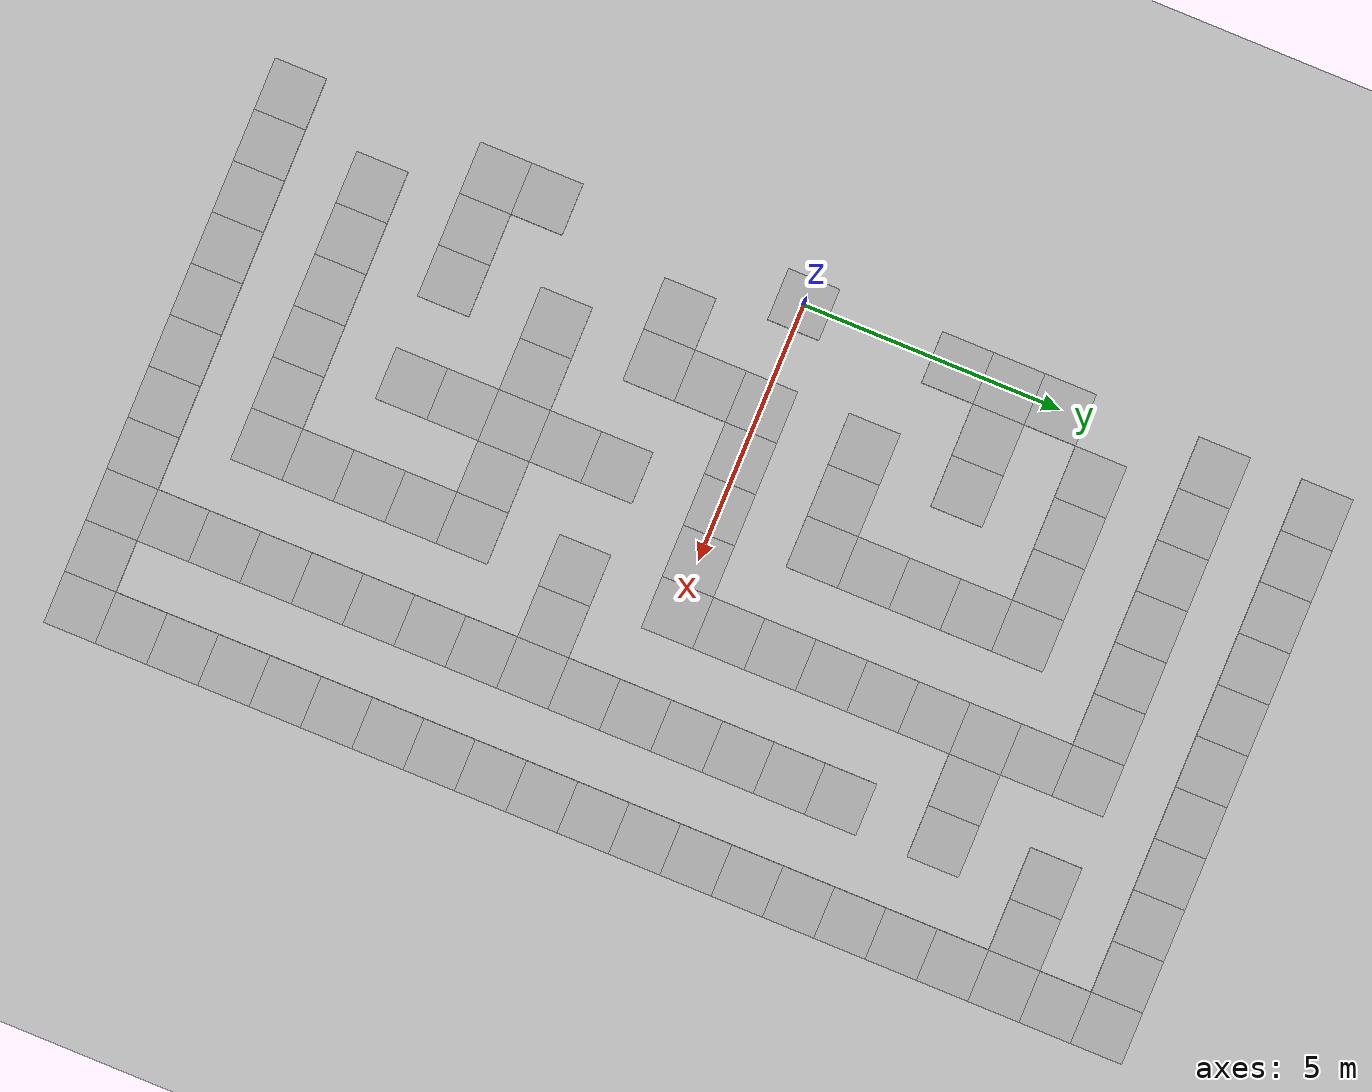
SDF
<sdf version="1.8">
 <world name="custom">
  <model name="ground_plane">
   <static>1</static>
   <link name="link">
    <collision name="collision">
     <geometry><plane><normal>0 0 1</normal><size>100 100</size></plane></geometry>
    </collision>
    <visual name="visual">
     <geometry><plane><normal>0 0 1</normal><size>100 100</size></plane></geometry>
     <material>
      <ambient>0.8 0.8 0.8 1</ambient>
      <diffuse>0.8 0.8 0.8 1</diffuse>
      <specular>0.8 0.8 0.8 1</specular>
     </material>
     <plugin name="__default__" filename="__default__"/>
    </visual>
   </link>
   <plugin name="__default__" filename="__default__"/>
  </model>
  <model name="obstacles">
   <pose>0 0 0.5 0 0 0</pose>
   <static>true</static>
   <link name="wall2">
    <pose>9 -10 -0.5 0 0 0</pose>
    <collision name="wall2_collision"><geometry><box><size>1 1 0.25</size></box></geometry></collision>
    <visual name="wall2_visual"><geometry><box><size>1 1 0.25</size></box></geometry></visual>
   </link>
   <link name="wall6">
    <pose>9 8 -0.5 0 0 0</pose>
    <collision name="wall6_collision"><geometry><box><size>1 1 0.25</size></box></geometry></collision>
    <visual name="wall6_visual"><geometry><box><size>1 1 0.25</size></box></geometry></visual>
   </link>
   <link name="wall8">
    <pose>1 4 -0.5 0 0 0</pose>
    <collision name="wall8_collision"><geometry><box><size>1 1 0.25</size></box></geometry></collision>
    <visual name="wall8_visual"><geometry><box><size>1 1 0.25</size></box></geometry></visual>
   </link>
   <link name="wall11">
    <pose>4 5 -0.5 0 0 0</pose>
    <collision name="wall11_collision"><geometry><box><size>1 1 0.25</size></box></geometry></collision>
    <visual name="wall11_visual"><geometry><box><size>1 1 0.25</size></box></geometry></visual>
   </link>
   <link name="wall12">
    <pose>8 -7 -0.5 0 0 0</pose>
    <collision name="wall12_collision"><geometry><box><size>1 1 0.25</size></box></geometry></collision>
    <visual name="wall12_visual"><geometry><box><size>1 1 0.25</size></box></geometry></visual>
   </link>
   <link name="wall14">
    <pose>8 2 -0.5 0 0 0</pose>
    <collision name="wall14_collision"><geometry><box><size>1 1 0.25</size></box></geometry></collision>
    <visual name="wall14_visual"><geometry><box><size>1 1 0.25</size></box></geometry></visual>
   </link>
   <link name="wall17">
    <pose>1 -10 -0.5 0 0 0</pose>
    <collision name="wall17_collision"><geometry><box><size>1 1 0.25</size></box></geometry></collision>
    <visual name="wall17_visual"><geometry><box><size>1 1 0.25</size></box></geometry></visual>
   </link>
   <link name="wall19">
    <pose>4 0 -0.5 0 0 0</pose>
    <collision name="wall19_collision"><geometry><box><size>1 1 0.25</size></box></geometry></collision>
    <visual name="wall19_visual"><geometry><box><size>1 1 0.25</size></box></geometry></visual>
   </link>
   <link name="wall20">
    <pose>5 -8 -0.5 0 0 0</pose>
    <collision name="wall20_collision"><geometry><box><size>1 1 0.25</size></box></geometry></collision>
    <visual name="wall20_visual"><geometry><box><size>1 1 0.25</size></box></geometry></visual>
   </link>
   <link name="wall21">
    <pose>8 -3 -0.5 0 0 0</pose>
    <collision name="wall21_collision"><geometry><box><size>1 1 0.25</size></box></geometry></collision>
    <visual name="wall21_visual"><geometry><box><size>1 1 0.25</size></box></geometry></visual>
   </link>
   <link name="wall23">
    <pose>8 6 -0.5 0 0 0</pose>
    <collision name="wall23_collision"><geometry><box><size>1 1 0.25</size></box></geometry></collision>
    <visual name="wall23_visual"><geometry><box><size>1 1 0.25</size></box></geometry></visual>
   </link>
   <link name="wall24">
    <pose>1 -6 -0.5 0 0 0</pose>
    <collision name="wall24_collision"><geometry><box><size>1 1 0.25</size></box></geometry></collision>
    <visual name="wall24_visual"><geometry><box><size>1 1 0.25</size></box></geometry></visual>
   </link>
   <link name="wall26">
    <pose>4 -5 -0.5 0 0 0</pose>
    <collision name="wall26_collision"><geometry><box><size>1 1 0.25</size></box></geometry></collision>
    <visual name="wall26_visual"><geometry><box><size>1 1 0.25</size></box></geometry></visual>
   </link>
   <link name="wall28">
    <pose>4 4 -0.5 0 0 0</pose>
    <collision name="wall28_collision"><geometry><box><size>1 1 0.25</size></box></geometry></collision>
    <visual name="wall28_visual"><geometry><box><size>1 1 0.25</size></box></geometry></visual>
   </link>
   <link name="wall29">
    <pose>5 -4 -0.5 0 0 0</pose>
    <collision name="wall29_collision"><geometry><box><size>1 1 0.25</size></box></geometry></collision>
    <visual name="wall29_visual"><geometry><box><size>1 1 0.25</size></box></geometry></visual>
   </link>
   <link name="wall30">
    <pose>8 -8 -0.5 0 0 0</pose>
    <collision name="wall30_collision"><geometry><box><size>1 1 0.25</size></box></geometry></collision>
    <visual name="wall30_visual"><geometry><box><size>1 1 0.25</size></box></geometry></visual>
   </link>
   <link name="wall31">
    <pose>8 1 -0.5 0 0 0</pose>
    <collision name="wall31_collision"><geometry><box><size>1 1 0.25</size></box></geometry></collision>
    <visual name="wall31_visual"><geometry><box><size>1 1 0.25</size></box></geometry></visual>
   </link>
   <link name="wall36">
    <pose>4 -10 -0.5 0 0 0</pose>
    <collision name="wall36_collision"><geometry><box><size>1 1 0.25</size></box></geometry></collision>
    <visual name="wall36_visual"><geometry><box><size>1 1 0.25</size></box></geometry></visual>
   </link>
   <link name="wall38">
    <pose>4 8 -0.5 0 0 0</pose>
    <collision name="wall38_collision"><geometry><box><size>1 1 0.25</size></box></geometry></collision>
    <visual name="wall38_visual"><geometry><box><size>1 1 0.25</size></box></geometry></visual>
   </link>
   <link name="wall39">
    <pose>7 10 -0.5 0 0 0</pose>
    <collision name="wall39_collision"><geometry><box><size>1 1 0.25</size></box></geometry></collision>
    <visual name="wall39_visual"><geometry><box><size>1 1 0.25</size></box></geometry></visual>
   </link>
   <link name="wall45">
    <pose>4 -6 -0.5 0 0 0</pose>
    <collision name="wall45_collision"><geometry><box><size>1 1 0.25</size></box></geometry></collision>
    <visual name="wall45_visual"><geometry><box><size>1 1 0.25</size></box></geometry></visual>
   </link>
   <link name="wall51">
    <pose>6 8 -0.5 0 0 0</pose>
    <collision name="wall51_collision"><geometry><box><size>1 1 0.25</size></box></geometry></collision>
    <visual name="wall51_visual"><geometry><box><size>1 1 0.25</size></box></geometry></visual>
   </link>
   <link name="wall55">
    <pose>10 10 -0.5 0 0 0</pose>
    <collision name="wall55_collision"><geometry><box><size>1 1 0.25</size></box></geometry></collision>
    <visual name="wall55_visual"><geometry><box><size>1 1 0.25</size></box></geometry></visual>
   </link>
   <link name="wall59">
    <pose>6 3 -0.5 0 0 0</pose>
    <collision name="wall59_collision"><geometry><box><size>1 1 0.25</size></box></geometry></collision>
    <visual name="wall59_visual"><geometry><box><size>1 1 0.25</size></box></geometry></visual>
   </link>
   <link name="wall62">
    <pose>10 5 -0.5 0 0 0</pose>
    <collision name="wall62_collision"><geometry><box><size>1 1 0.25</size></box></geometry></collision>
    <visual name="wall62_visual"><geometry><box><size>1 1 0.25</size></box></geometry></visual>
   </link>
   <link name="wall63">
    <pose>2 10 -0.5 0 0 0</pose>
    <collision name="wall63_collision"><geometry><box><size>1 1 0.25</size></box></geometry></collision>
    <visual name="wall63_visual"><geometry><box><size>1 1 0.25</size></box></geometry></visual>
   </link>
   <link name="wall64">
    <pose>3 2 -0.5 0 0 0</pose>
    <collision name="wall64_collision"><geometry><box><size>1 1 0.25</size></box></geometry></collision>
    <visual name="wall64_visual"><geometry><box><size>1 1 0.25</size></box></geometry></visual>
   </link>
   <link name="wall65">
    <pose>6 -2 -0.5 0 0 0</pose>
    <collision name="wall65_collision"><geometry><box><size>1 1 0.25</size></box></geometry></collision>
    <visual name="wall65_visual"><geometry><box><size>1 1 0.25</size></box></geometry></visual>
   </link>
   <link name="wall66">
    <pose>6 7 -0.5 0 0 0</pose>
    <collision name="wall66_collision"><geometry><box><size>1 1 0.25</size></box></geometry></collision>
    <visual name="wall66_visual"><geometry><box><size>1 1 0.25</size></box></geometry></visual>
   </link>
   <link name="wall67">
    <pose>7 -10 -0.5 0 0 0</pose>
    <collision name="wall67_collision"><geometry><box><size>1 1 0.25</size></box></geometry></collision>
    <visual name="wall67_visual"><geometry><box><size>1 1 0.25</size></box></geometry></visual>
   </link>
   <link name="wall69">
    <pose>10 -9 -0.5 0 0 0</pose>
    <collision name="wall69_collision"><geometry><box><size>1 1 0.25</size></box></geometry></collision>
    <visual name="wall69_visual"><geometry><box><size>1 1 0.25</size></box></geometry></visual>
   </link>
   <link name="wall70">
    <pose>10 0 -0.5 0 0 0</pose>
    <collision name="wall70_collision"><geometry><box><size>1 1 0.25</size></box></geometry></collision>
    <visual name="wall70_visual"><geometry><box><size>1 1 0.25</size></box></geometry></visual>
   </link>
   <link name="wall71">
    <pose>2 -4 -0.5 0 0 0</pose>
    <collision name="wall71_collision"><geometry><box><size>1 1 0.25</size></box></geometry></collision>
    <visual name="wall71_visual"><geometry><box><size>1 1 0.25</size></box></geometry></visual>
   </link>
   <link name="wall72">
    <pose>10 9 -0.5 0 0 0</pose>
    <collision name="wall72_collision"><geometry><box><size>1 1 0.25</size></box></geometry></collision>
    <visual name="wall72_visual"><geometry><box><size>1 1 0.25</size></box></geometry></visual>
   </link>
   <link name="wall74">
    <pose>6 -7 -0.5 0 0 0</pose>
    <collision name="wall74_collision"><geometry><box><size>1 1 0.25</size></box></geometry></collision>
    <visual name="wall74_visual"><geometry><box><size>1 1 0.25</size></box></geometry></visual>
   </link>
   <link name="wall75">
    <pose>3 6 -0.5 0 0 0</pose>
    <collision name="wall75_collision"><geometry><box><size>1 1 0.25</size></box></geometry></collision>
    <visual name="wall75_visual"><geometry><box><size>1 1 0.25</size></box></geometry></visual>
   </link>
   <link name="wall76">
    <pose>6 2 -0.5 0 0 0</pose>
    <collision name="wall76_collision"><geometry><box><size>1 1 0.25</size></box></geometry></collision>
    <visual name="wall76_visual"><geometry><box><size>1 1 0.25</size></box></geometry></visual>
   </link>
   <link name="wall79">
    <pose>1 8 -0.5 0 0 0</pose>
    <collision name="wall79_collision"><geometry><box><size>1 1 0.25</size></box></geometry></collision>
    <visual name="wall79_visual"><geometry><box><size>1 1 0.25</size></box></geometry></visual>
   </link>
   <link name="wall80">
    <pose>10 -5 -0.5 0 0 0</pose>
    <collision name="wall80_collision"><geometry><box><size>1 1 0.25</size></box></geometry></collision>
    <visual name="wall80_visual"><geometry><box><size>1 1 0.25</size></box></geometry></visual>
   </link>
   <link name="wall81">
    <pose>10 4 -0.5 0 0 0</pose>
    <collision name="wall81_collision"><geometry><box><size>1 1 0.25</size></box></geometry></collision>
    <visual name="wall81_visual"><geometry><box><size>1 1 0.25</size></box></geometry></visual>
   </link>
   <link name="wall82">
    <pose>2 0 -0.5 0 0 0</pose>
    <collision name="wall82_collision"><geometry><box><size>1 1 0.25</size></box></geometry></collision>
    <visual name="wall82_visual"><geometry><box><size>1 1 0.25</size></box></geometry></visual>
   </link>
   <link name="wall85">
    <pose>3 -8 -0.5 0 0 0</pose>
    <collision name="wall85_collision"><geometry><box><size>1 1 0.25</size></box></geometry></collision>
    <visual name="wall85_visual"><geometry><box><size>1 1 0.25</size></box></geometry></visual>
   </link>
   <link name="wall86">
    <pose>6 6 -0.5 0 0 0</pose>
    <collision name="wall86_collision"><geometry><box><size>1 1 0.25</size></box></geometry></collision>
    <visual name="wall86_visual"><geometry><box><size>1 1 0.25</size></box></geometry></visual>
   </link>
   <link name="wall87">
    <pose>5 10 -0.5 0 0 0</pose>
    <collision name="wall87_collision"><geometry><box><size>1 1 0.25</size></box></geometry></collision>
    <visual name="wall87_visual"><geometry><box><size>1 1 0.25</size></box></geometry></visual>
   </link>
   <link name="wall89">
    <pose>8 -2 -0.5 0 0 0</pose>
    <collision name="wall89_collision"><geometry><box><size>1 1 0.25</size></box></geometry></collision>
    <visual name="wall89_visual"><geometry><box><size>1 1 0.25</size></box></geometry></visual>
   </link>
   <link name="wall94">
    <pose>10 -10 -0.5 0 0 0</pose>
    <collision name="wall94_collision"><geometry><box><size>1 1 0.25</size></box></geometry></collision>
    <visual name="wall94_visual"><geometry><box><size>1 1 0.25</size></box></geometry></visual>
   </link>
   <link name="wall95">
    <pose>10 -1 -0.5 0 0 0</pose>
    <collision name="wall95_collision"><geometry><box><size>1 1 0.25</size></box></geometry></collision>
    <visual name="wall95_visual"><geometry><box><size>1 1 0.25</size></box></geometry></visual>
   </link>
   <link name="wall96">
    <pose>10 8 -0.5 0 0 0</pose>
    <collision name="wall96_collision"><geometry><box><size>1 1 0.25</size></box></geometry></collision>
    <visual name="wall96_visual"><geometry><box><size>1 1 0.25</size></box></geometry></visual>
   </link>
   <link name="wall97">
    <pose>2 4 -0.5 0 0 0</pose>
    <collision name="wall97_collision"><geometry><box><size>1 1 0.25</size></box></geometry></collision>
    <visual name="wall97_visual"><geometry><box><size>1 1 0.25</size></box></geometry></visual>
   </link>
   <link name="wall100">
    <pose>6 -8 -0.5 0 0 0</pose>
    <collision name="wall100_collision"><geometry><box><size>1 1 0.25</size></box></geometry></collision>
    <visual name="wall100_visual"><geometry><box><size>1 1 0.25</size></box></geometry></visual>
   </link>
   <link name="wall102">
    <pose>8 10 -0.5 0 0 0</pose>
    <collision name="wall102_collision"><geometry><box><size>1 1 0.25</size></box></geometry></collision>
    <visual name="wall102_visual"><geometry><box><size>1 1 0.25</size></box></geometry></visual>
   </link>
   <link name="wall105">
    <pose>1 -2 -0.5 0 0 0</pose>
    <collision name="wall105_collision"><geometry><box><size>1 1 0.25</size></box></geometry></collision>
    <visual name="wall105_visual"><geometry><box><size>1 1 0.25</size></box></geometry></visual>
   </link>
   <link name="wall107">
    <pose>10 -6 -0.5 0 0 0</pose>
    <collision name="wall107_collision"><geometry><box><size>1 1 0.25</size></box></geometry></collision>
    <visual name="wall107_visual"><geometry><box><size>1 1 0.25</size></box></geometry></visual>
   </link>
   <link name="wall108">
    <pose>2 -10 -0.5 0 0 0</pose>
    <collision name="wall108_collision"><geometry><box><size>1 1 0.25</size></box></geometry></collision>
    <visual name="wall108_visual"><geometry><box><size>1 1 0.25</size></box></geometry></visual>
   </link>
   <link name="wall109">
    <pose>10 3 -0.5 0 0 0</pose>
    <collision name="wall109_collision"><geometry><box><size>1 1 0.25</size></box></geometry></collision>
    <visual name="wall109_visual"><geometry><box><size>1 1 0.25</size></box></geometry></visual>
   </link>
   <link name="wall110">
    <pose>2 -1 -0.5 0 0 0</pose>
    <collision name="wall110_collision"><geometry><box><size>1 1 0.25</size></box></geometry></collision>
    <visual name="wall110_visual"><geometry><box><size>1 1 0.25</size></box></geometry></visual>
   </link>
   <link name="wall113">
    <pose>5 0 -0.5 0 0 0</pose>
    <collision name="wall113_collision"><geometry><box><size>1 1 0.25</size></box></geometry></collision>
    <visual name="wall113_visual"><geometry><box><size>1 1 0.25</size></box></geometry></visual>
   </link>
   <link name="wall114">
    <pose>8 -4 -0.5 0 0 0</pose>
    <collision name="wall114_collision"><geometry><box><size>1 1 0.25</size></box></geometry></collision>
    <visual name="wall114_visual"><geometry><box><size>1 1 0.25</size></box></geometry></visual>
   </link>
   <link name="wall119">
    <pose>2 -6 -0.5 0 0 0</pose>
    <collision name="wall119_collision"><geometry><box><size>1 1 0.25</size></box></geometry></collision>
    <visual name="wall119_visual"><geometry><box><size>1 1 0.25</size></box></geometry></visual>
   </link>
   <link name="wall121">
    <pose>4 3 -0.5 0 0 0</pose>
    <collision name="wall121_collision"><geometry><box><size>1 1 0.25</size></box></geometry></collision>
    <visual name="wall121_visual"><geometry><box><size>1 1 0.25</size></box></geometry></visual>
   </link>
   <link name="wall122">
    <pose>8 -9 -0.5 0 0 0</pose>
    <collision name="wall122_collision"><geometry><box><size>1 1 0.25</size></box></geometry></collision>
    <visual name="wall122_visual"><geometry><box><size>1 1 0.25</size></box></geometry></visual>
   </link>
   <link name="wall124">
    <pose>8 0 -0.5 0 0 0</pose>
    <collision name="wall124_collision"><geometry><box><size>1 1 0.25</size></box></geometry></collision>
    <visual name="wall124_visual"><geometry><box><size>1 1 0.25</size></box></geometry></visual>
   </link>
   <link name="wall128">
    <pose>1 6 -0.5 0 0 0</pose>
    <collision name="wall128_collision"><geometry><box><size>1 1 0.25</size></box></geometry></collision>
    <visual name="wall128_visual"><geometry><box><size>1 1 0.25</size></box></geometry></visual>
   </link>
   <link name="wall129">
    <pose>0 10 -0.5 0 0 0</pose>
    <collision name="wall129_collision"><geometry><box><size>1 1 0.25</size></box></geometry></collision>
    <visual name="wall129_visual"><geometry><box><size>1 1 0.25</size></box></geometry></visual>
   </link>
   <link name="wall131">
    <pose>4 -2 -0.5 0 0 0</pose>
    <collision name="wall131_collision"><geometry><box><size>1 1 0.25</size></box></geometry></collision>
    <visual name="wall131_visual"><geometry><box><size>1 1 0.25</size></box></geometry></visual>
   </link>
   <link name="wall132">
    <pose>5 -10 -0.5 0 0 0</pose>
    <collision name="wall132_collision"><geometry><box><size>1 1 0.25</size></box></geometry></collision>
    <visual name="wall132_visual"><geometry><box><size>1 1 0.25</size></box></geometry></visual>
   </link>
   <link name="wall133">
    <pose>8 -5 -0.5 0 0 0</pose>
    <collision name="wall133_collision"><geometry><box><size>1 1 0.25</size></box></geometry></collision>
    <visual name="wall133_visual"><geometry><box><size>1 1 0.25</size></box></geometry></visual>
   </link>
   <link name="wall134">
    <pose>5 8 -0.5 0 0 0</pose>
    <collision name="wall134_collision"><geometry><box><size>1 1 0.25</size></box></geometry></collision>
    <visual name="wall134_visual"><geometry><box><size>1 1 0.25</size></box></geometry></visual>
   </link>
   <link name="wall135">
    <pose>8 4 -0.5 0 0 0</pose>
    <collision name="wall135_collision"><geometry><box><size>1 1 0.25</size></box></geometry></collision>
    <visual name="wall135_visual"><geometry><box><size>1 1 0.25</size></box></geometry></visual>
   </link>
   <link name="wall137">
    <pose>1 -8 -0.5 0 0 0</pose>
    <collision name="wall137_collision"><geometry><box><size>1 1 0.25</size></box></geometry></collision>
    <visual name="wall137_visual"><geometry><box><size>1 1 0.25</size></box></geometry></visual>
   </link>
   <link name="wall138">
    <pose>0 5 -0.5 0 0 0</pose>
    <collision name="wall138_collision"><geometry><box><size>1 1 0.25</size></box></geometry></collision>
    <visual name="wall138_visual"><geometry><box><size>1 1 0.25</size></box></geometry></visual>
   </link>
   <link name="wall141">
    <pose>4 2 -0.5 0 0 0</pose>
    <collision name="wall141_collision"><geometry><box><size>1 1 0.25</size></box></geometry></collision>
    <visual name="wall141_visual"><geometry><box><size>1 1 0.25</size></box></geometry></visual>
   </link>
   <link name="wall143">
    <pose>8 -10 -0.5 0 0 0</pose>
    <collision name="wall143_collision"><geometry><box><size>1 1 0.25</size></box></geometry></collision>
    <visual name="wall143_visual"><geometry><box><size>1 1 0.25</size></box></geometry></visual>
   </link>
   <link name="wall144">
    <pose>8 -1 -0.5 0 0 0</pose>
    <collision name="wall144_collision"><geometry><box><size>1 1 0.25</size></box></geometry></collision>
    <visual name="wall144_visual"><geometry><box><size>1 1 0.25</size></box></geometry></visual>
   </link>
   <link name="wall145">
    <pose>8 8 -0.5 0 0 0</pose>
    <collision name="wall145_collision"><geometry><box><size>1 1 0.25</size></box></geometry></collision>
    <visual name="wall145_visual"><geometry><box><size>1 1 0.25</size></box></geometry></visual>
   </link>
   <link name="wall146">
    <pose>0 0 -0.5 0 0 0</pose>
    <collision name="wall146_collision"><geometry><box><size>1 1 0.25</size></box></geometry></collision>
    <visual name="wall146_visual"><geometry><box><size>1 1 0.25</size></box></geometry></visual>
   </link>
   <link name="wall148">
    <pose>4 -3 -0.5 0 0 0</pose>
    <collision name="wall148_collision"><geometry><box><size>1 1 0.25</size></box></geometry></collision>
    <visual name="wall148_visual"><geometry><box><size>1 1 0.25</size></box></geometry></visual>
   </link>
   <link name="wall150">
    <pose>4 6 -0.5 0 0 0</pose>
    <collision name="wall150_collision"><geometry><box><size>1 1 0.25</size></box></geometry></collision>
    <visual name="wall150_visual"><geometry><box><size>1 1 0.25</size></box></geometry></visual>
   </link>
   <link name="wall152">
    <pose>8 -6 -0.5 0 0 0</pose>
    <collision name="wall152_collision"><geometry><box><size>1 1 0.25</size></box></geometry></collision>
    <visual name="wall152_visual"><geometry><box><size>1 1 0.25</size></box></geometry></visual>
   </link>
   <link name="wall154">
    <pose>0 -5 -0.5 0 0 0</pose>
    <collision name="wall154_collision"><geometry><box><size>1 1 0.25</size></box></geometry></collision>
    <visual name="wall154_visual"><geometry><box><size>1 1 0.25</size></box></geometry></visual>
   </link>
   <link name="wall156">
    <pose>0 4 -0.5 0 0 0</pose>
    <collision name="wall156_collision"><geometry><box><size>1 1 0.25</size></box></geometry></collision>
    <visual name="wall156_visual"><geometry><box><size>1 1 0.25</size></box></geometry></visual>
   </link>
   <link name="wall158">
    <pose>4 -8 -0.5 0 0 0</pose>
    <collision name="wall158_collision"><geometry><box><size>1 1 0.25</size></box></geometry></collision>
    <visual name="wall158_visual"><geometry><box><size>1 1 0.25</size></box></geometry></visual>
   </link>
   <link name="wall163">
    <pose>0 -10 -0.5 0 0 0</pose>
    <collision name="wall163_collision"><geometry><box><size>1 1 0.25</size></box></geometry></collision>
    <visual name="wall163_visual"><geometry><box><size>1 1 0.25</size></box></geometry></visual>
   </link>
   <link name="wall164">
    <pose>0 8 -0.5 0 0 0</pose>
    <collision name="wall164_collision"><geometry><box><size>1 1 0.25</size></box></geometry></collision>
    <visual name="wall164_visual"><geometry><box><size>1 1 0.25</size></box></geometry></visual>
   </link>
   <link name="wall166">
    <pose>3 10 -0.5 0 0 0</pose>
    <collision name="wall166_collision"><geometry><box><size>1 1 0.25</size></box></geometry></collision>
    <visual name="wall166_visual"><geometry><box><size>1 1 0.25</size></box></geometry></visual>
   </link>
   <link name="wall167">
    <pose>4 -4 -0.5 0 0 0</pose>
    <collision name="wall167_collision"><geometry><box><size>1 1 0.25</size></box></geometry></collision>
    <visual name="wall167_visual"><geometry><box><size>1 1 0.25</size></box></geometry></visual>
   </link>
   <link name="wall168">
    <pose>7 -2 -0.5 0 0 0</pose>
    <collision name="wall168_collision"><geometry><box><size>1 1 0.25</size></box></geometry></collision>
    <visual name="wall168_visual"><geometry><box><size>1 1 0.25</size></box></geometry></visual>
   </link>
   <link name="wall171">
    <pose>0 -6 -0.5 0 0 0</pose>
    <collision name="wall171_collision"><geometry><box><size>1 1 0.25</size></box></geometry></collision>
    <visual name="wall171_visual"><geometry><box><size>1 1 0.25</size></box></geometry></visual>
   </link>
   <link name="wall173">
    <pose>0 3 -0.5 0 0 0</pose>
    <collision name="wall173_collision"><geometry><box><size>1 1 0.25</size></box></geometry></collision>
    <visual name="wall173_visual"><geometry><box><size>1 1 0.25</size></box></geometry></visual>
   </link>
   <link name="wall175">
    <pose>3 -4 -0.5 0 0 0</pose>
    <collision name="wall175_collision"><geometry><box><size>1 1 0.25</size></box></geometry></collision>
    <visual name="wall175_visual"><geometry><box><size>1 1 0.25</size></box></geometry></visual>
   </link>
   <link name="wall177">
    <pose>6 1 -0.5 0 0 0</pose>
    <collision name="wall177_collision"><geometry><box><size>1 1 0.25</size></box></geometry></collision>
    <visual name="wall177_visual"><geometry><box><size>1 1 0.25</size></box></geometry></visual>
   </link>
   <link name="wall178">
    <pose>6 10 -0.5 0 0 0</pose>
    <collision name="wall178_collision"><geometry><box><size>1 1 0.25</size></box></geometry></collision>
    <visual name="wall178_visual"><geometry><box><size>1 1 0.25</size></box></geometry></visual>
   </link>
   <link name="wall183">
    <pose>2 8 -0.5 0 0 0</pose>
    <collision name="wall183_collision"><geometry><box><size>1 1 0.25</size></box></geometry></collision>
    <visual name="wall183_visual"><geometry><box><size>1 1 0.25</size></box></geometry></visual>
   </link>
   <link name="wall185">
    <pose>3 0 -0.5 0 0 0</pose>
    <collision name="wall185_collision"><geometry><box><size>1 1 0.25</size></box></geometry></collision>
    <visual name="wall185_visual"><geometry><box><size>1 1 0.25</size></box></geometry></visual>
   </link>
   <link name="wall186">
    <pose>6 -4 -0.5 0 0 0</pose>
    <collision name="wall186_collision"><geometry><box><size>1 1 0.25</size></box></geometry></collision>
    <visual name="wall186_visual"><geometry><box><size>1 1 0.25</size></box></geometry></visual>
   </link>
   <link name="wall187">
    <pose>6 5 -0.5 0 0 0</pose>
    <collision name="wall187_collision"><geometry><box><size>1 1 0.25</size></box></geometry></collision>
    <visual name="wall187_visual"><geometry><box><size>1 1 0.25</size></box></geometry></visual>
   </link>
   <link name="wall189">
    <pose>7 6 -0.5 0 0 0</pose>
    <collision name="wall189_collision"><geometry><box><size>1 1 0.25</size></box></geometry></collision>
    <visual name="wall189_visual"><geometry><box><size>1 1 0.25</size></box></geometry></visual>
   </link>
   <link name="wall192">
    <pose>10 -2 -0.5 0 0 0</pose>
    <collision name="wall192_collision"><geometry><box><size>1 1 0.25</size></box></geometry></collision>
    <visual name="wall192_visual"><geometry><box><size>1 1 0.25</size></box></geometry></visual>
   </link>
   <link name="wall193">
    <pose>10 7 -0.5 0 0 0</pose>
    <collision name="wall193_collision"><geometry><box><size>1 1 0.25</size></box></geometry></collision>
    <visual name="wall193_visual"><geometry><box><size>1 1 0.25</size></box></geometry></visual>
   </link>
   <link name="wall195">
    <pose>6 0 -0.5 0 0 0</pose>
    <collision name="wall195_collision"><geometry><box><size>1 1 0.25</size></box></geometry></collision>
    <visual name="wall195_visual"><geometry><box><size>1 1 0.25</size></box></geometry></visual>
   </link>
   <link name="wall199">
    <pose>9 10 -0.5 0 0 0</pose>
    <collision name="wall199_collision"><geometry><box><size>1 1 0.25</size></box></geometry></collision>
    <visual name="wall199_visual"><geometry><box><size>1 1 0.25</size></box></geometry></visual>
   </link>
   <link name="wall200">
    <pose>10 -7 -0.5 0 0 0</pose>
    <collision name="wall200_collision"><geometry><box><size>1 1 0.25</size></box></geometry></collision>
    <visual name="wall200_visual"><geometry><box><size>1 1 0.25</size></box></geometry></visual>
   </link>
   <link name="wall201">
    <pose>10 2 -0.5 0 0 0</pose>
    <collision name="wall201_collision"><geometry><box><size>1 1 0.25</size></box></geometry></collision>
    <visual name="wall201_visual"><geometry><box><size>1 1 0.25</size></box></geometry></visual>
   </link>
   <link name="wall202">
    <pose>2 -2 -0.5 0 0 0</pose>
    <collision name="wall202_collision"><geometry><box><size>1 1 0.25</size></box></geometry></collision>
    <visual name="wall202_visual"><geometry><box><size>1 1 0.25</size></box></geometry></visual>
   </link>
   <link name="wall204">
    <pose>3 -10 -0.5 0 0 0</pose>
    <collision name="wall204_collision"><geometry><box><size>1 1 0.25</size></box></geometry></collision>
    <visual name="wall204_visual"><geometry><box><size>1 1 0.25</size></box></geometry></visual>
   </link>
   <link name="wall205">
    <pose>6 -5 -0.5 0 0 0</pose>
    <collision name="wall205_collision"><geometry><box><size>1 1 0.25</size></box></geometry></collision>
    <visual name="wall205_visual"><geometry><box><size>1 1 0.25</size></box></geometry></visual>
   </link>
   <link name="wall207">
    <pose>3 8 -0.5 0 0 0</pose>
    <collision name="wall207_collision"><geometry><box><size>1 1 0.25</size></box></geometry></collision>
    <visual name="wall207_visual"><geometry><box><size>1 1 0.25</size></box></geometry></visual>
   </link>
   <link name="wall208">
    <pose>6 4 -0.5 0 0 0</pose>
    <collision name="wall208_collision"><geometry><box><size>1 1 0.25</size></box></geometry></collision>
    <visual name="wall208_visual"><geometry><box><size>1 1 0.25</size></box></geometry></visual>
   </link>
   <link name="wall214">
    <pose>1 10 -0.5 0 0 0</pose>
    <collision name="wall214_collision"><geometry><box><size>1 1 0.25</size></box></geometry></collision>
    <visual name="wall214_visual"><geometry><box><size>1 1 0.25</size></box></geometry></visual>
   </link>
   <link name="wall215">
    <pose>10 -3 -0.5 0 0 0</pose>
    <collision name="wall215_collision"><geometry><box><size>1 1 0.25</size></box></geometry></collision>
    <visual name="wall215_visual"><geometry><box><size>1 1 0.25</size></box></geometry></visual>
   </link>
   <link name="wall216">
    <pose>10 6 -0.5 0 0 0</pose>
    <collision name="wall216_collision"><geometry><box><size>1 1 0.25</size></box></geometry></collision>
    <visual name="wall216_visual"><geometry><box><size>1 1 0.25</size></box></geometry></visual>
   </link>
   <link name="wall217">
    <pose>2 2 -0.5 0 0 0</pose>
    <collision name="wall217_collision"><geometry><box><size>1 1 0.25</size></box></geometry></collision>
    <visual name="wall217_visual"><geometry><box><size>1 1 0.25</size></box></geometry></visual>
   </link>
   <link name="wall219">
    <pose>6 -10 -0.5 0 0 0</pose>
    <collision name="wall219_collision"><geometry><box><size>1 1 0.25</size></box></geometry></collision>
    <visual name="wall219_visual"><geometry><box><size>1 1 0.25</size></box></geometry></visual>
   </link>
   <link name="wall225">
    <pose>10 -8 -0.5 0 0 0</pose>
    <collision name="wall225_collision"><geometry><box><size>1 1 0.25</size></box></geometry></collision>
    <visual name="wall225_visual"><geometry><box><size>1 1 0.25</size></box></geometry></visual>
   </link>
   <link name="wall226">
    <pose>10 1 -0.5 0 0 0</pose>
    <collision name="wall226_collision"><geometry><box><size>1 1 0.25</size></box></geometry></collision>
    <visual name="wall226_visual"><geometry><box><size>1 1 0.25</size></box></geometry></visual>
   </link>
   <link name="wall228">
    <pose>2 6 -0.5 0 0 0</pose>
    <collision name="wall228_collision"><geometry><box><size>1 1 0.25</size></box></geometry></collision>
    <visual name="wall228_visual"><geometry><box><size>1 1 0.25</size></box></geometry></visual>
   </link>
   <link name="wall231">
    <pose>6 -6 -0.5 0 0 0</pose>
    <collision name="wall231_collision"><geometry><box><size>1 1 0.25</size></box></geometry></collision>
    <visual name="wall231_visual"><geometry><box><size>1 1 0.25</size></box></geometry></visual>
   </link>
   <link name="wall232">
    <pose>8 3 -0.5 0 0 0</pose>
    <collision name="wall232_collision"><geometry><box><size>1 1 0.25</size></box></geometry></collision>
    <visual name="wall232_visual"><geometry><box><size>1 1 0.25</size></box></geometry></visual>
   </link>
   <link name="wall238">
    <pose>10 -4 -0.5 0 0 0</pose>
    <collision name="wall238_collision"><geometry><box><size>1 1 0.25</size></box></geometry></collision>
    <visual name="wall238_visual"><geometry><box><size>1 1 0.25</size></box></geometry></visual>
   </link>
   <link name="wall239">
    <pose>2 -8 -0.5 0 0 0</pose>
    <collision name="wall239_collision"><geometry><box><size>1 1 0.25</size></box></geometry></collision>
    <visual name="wall239_visual"><geometry><box><size>1 1 0.25</size></box></geometry></visual>
   </link>
   <link name="wall242">
    <pose>4 10 -0.5 0 0 0</pose>
    <collision name="wall242_collision"><geometry><box><size>1 1 0.25</size></box></geometry></collision>
    <visual name="wall242_visual"><geometry><box><size>1 1 0.25</size></box></geometry></visual>
   </link>
  </model>
 </world>
</sdf>
